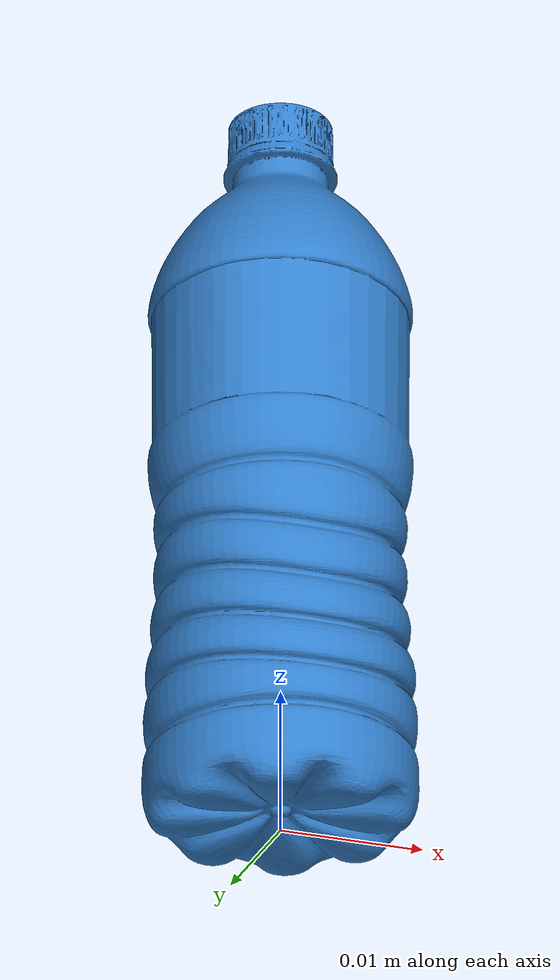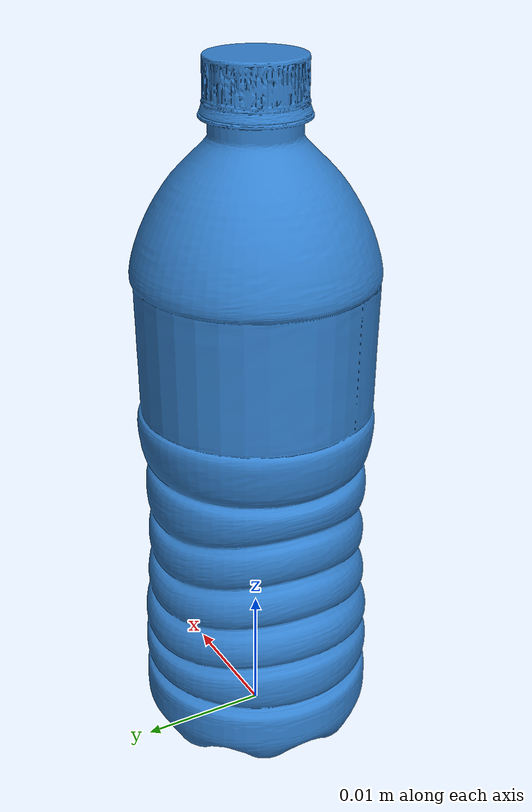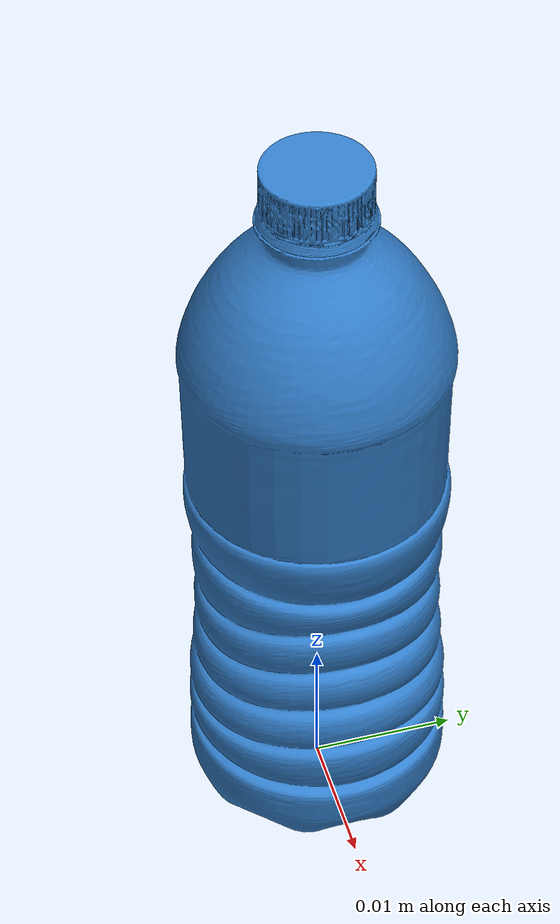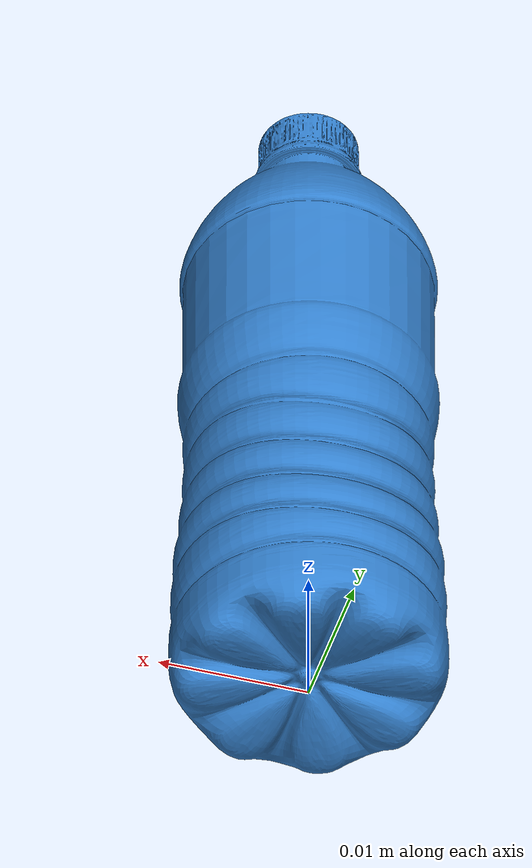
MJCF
<mujoco model="pnp_bottle">
    <compiler angle="degree" coordinate="local" />
    <option timestep="0.01" gravity="0 0 -9.81"/>

    <asset>
        <mesh name="bottle_vis" file="visual/water_bottle.stl" scale="0.001 0.001 0.001" />
        <mesh name="bottle_mesh" file="collision/water_bottle.stl" scale="0.001 0.001 0.001" />
        <material name="mat" rgba="0.2 0.5 0.8 1" specular="0.0" shininess="0.2"/>
    </asset>

    <worldbody>
        <body>
            <body name="object" pos="0 0 0">
                <geom solimp="0.998 0.998 0.001"
                      solref="0.001 1"
                      density="100"
                      friction="0.6 0.4 0.1"
                      type="mesh"
                      mesh="bottle_vis"
                      conaffinity="0"
                      contype="0"
                      group="1"
                      material="mat" />

                <geom name="bottle_geom"
                      type="mesh"
                      mesh="bottle_mesh"
                      rgba="0.2 0.5 0.8 1"
                      mass="0.3"
                      group="0"/>
            </body>

            <site name="bottom_site" pos="0 0 -0.03" size="0.005" rgba="0 0 0 0"/>
            <site name="top_site" pos="0 0 0.03" size="0.005" rgba="0 0 0 0"/>
            <site name="horizontal_radius_site" pos="0.04 0 0" size="0.005" rgba="0 0 0 0"/>
        </body>
    </worldbody>
</mujoco>
